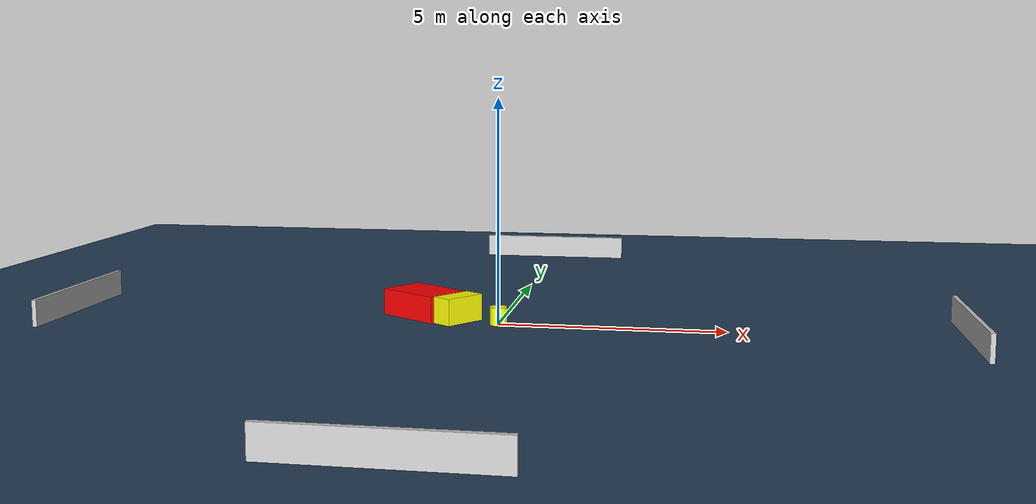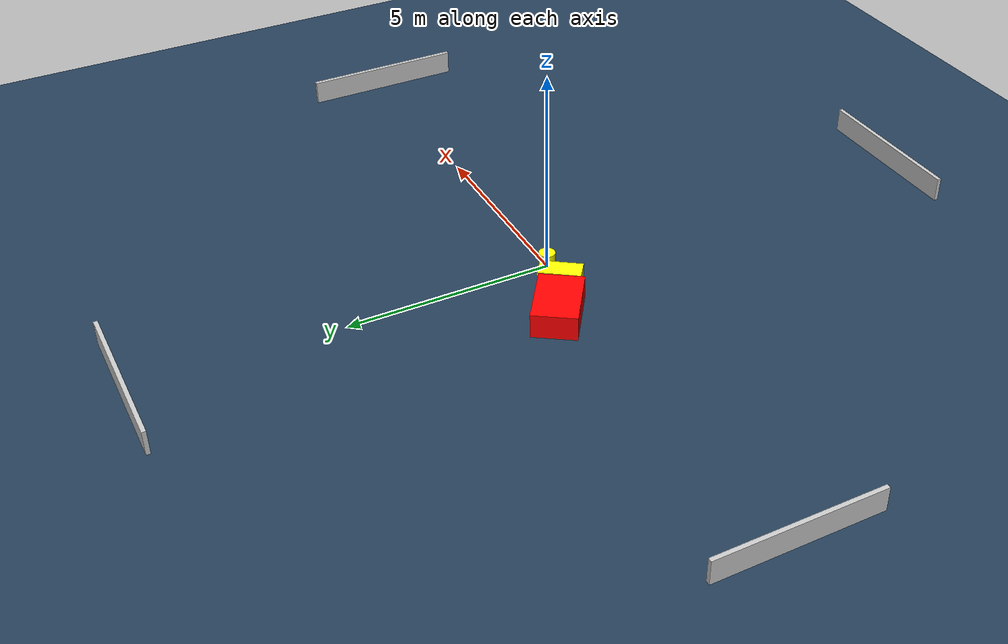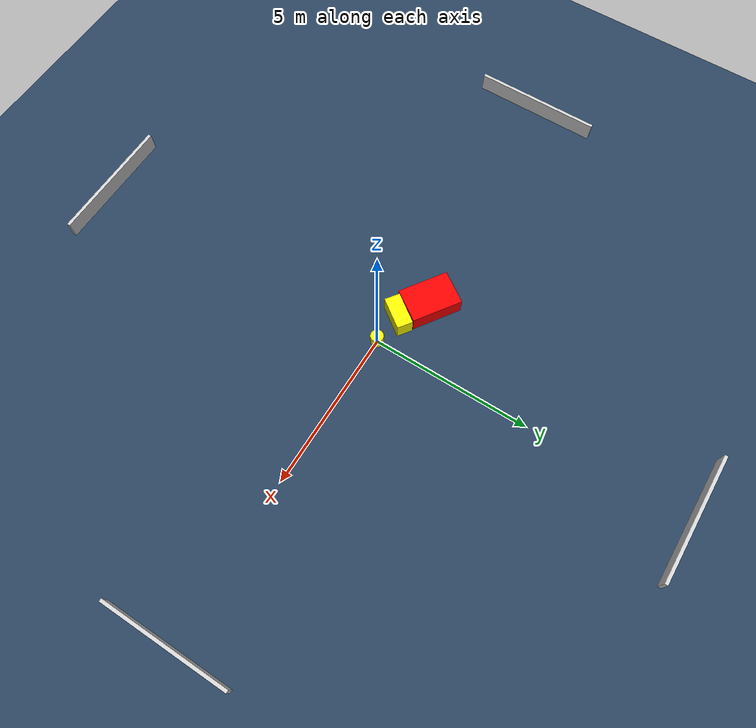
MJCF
<?xml version="1.0" ?>
<mujoco model="generated_environment">
  <option timestep="0.01" integrator="RK4" cone="elliptic"/>
  <default>
    <geom density="1"/>
  </default>
  <asset>
    <texture builtin="gradient" height="3072" name="skybox" rgb1="0.3 0.5 0.7" rgb2="0 0 0" type="skybox" width="512"/>
    <texture builtin="checker" height="300" name="groundplane" rgb1="0.2 0.3 0.4" rgb2="0.1 0.2 0.3" type="2d" width="300"/>
    <material name="groundplane" reflectance="0.2" texrepeat="5 5" texture="groundplane"/>
  </asset>
  <worldbody>
    <light dir="0 0 -1" directional="true" pos="0 0 1.5"/>
    <geom condim="3" friction="0.5 0.005 0.001" material="groundplane" name="floor" pos="0 0 0" size="0 0 0.05" type="plane"/>
    <body name="walls">
      <geom name="wall_1" condim="4" pos="-10.0 0.0 0.3" rgba="0.800000011920929 0.800000011920929 0.800000011920929 1.0" size="0.05 2.0 0.3" type="box"/>
      <geom name="wall_2" condim="4" pos="10.0 0.0 0.3" rgba="0.800000011920929 0.800000011920929 0.800000011920929 1.0" size="0.05 2.0 0.3" type="box"/>
      <geom name="wall_3" condim="4" pos="0.0 -10.0 0.3" rgba="0.800000011920929 0.800000011920929 0.800000011920929 1.0" size="2.0 0.05 0.3" type="box"/>
      <geom name="wall_4" condim="4" pos="0.0 10.0 0.3" rgba="0.800000011920929 0.800000011920929 0.800000011920929 1.0" size="2.0 0.05 0.3" type="box"/>
    </body>
    <body name="robot">
      <joint name="joint_x" type="slide" pos="0 0 0" axis="1 0 0"/>
      <joint name="joint_y" type="slide" pos="0 0 0" axis="0 1 0"/>
      <geom name="robot" type="cylinder" pos="0.0 0.0 0.2" size="0.2 0.2 0.0" mass="5.0" friction="1.0 0.005 0.0001" condim="4" rgba="1.0 1.0 0.0 1.0"/>
    </body>
    <body name="obstacle_1_movable">
      <geom name="obstacle_1_movable" condim="4" pos="-0.9457895155842492 0.15035812398141676 0.3" euler="0 0 144.2414925160386" friction="0.0 0.005 0.001" rgba="1.0 1.0 0.0 1.0" size="0.24534813193193072 0.5036715347783945 0.3" type="box" mass="0.1"/>
      <joint type="free"/>
    </body>
    <body name="obstacle_2_static">
      <geom name="obstacle_2_static" condim="4" pos="-1.8455430426007722 0.696119663171668 0.3" euler="0 0 235.67133738019143" friction="0.0 0.005 0.001" rgba="1.0 0.0 0.0 1.0" size="0.5340748022603932 0.786400881784546 0.3" type="box"/>
    </body>
  </worldbody>
  <actuator>
    <motor name="actuator_x" joint="joint_x" gear="1" ctrlrange="-1 1"/>
    <motor name="actuator_y" joint="joint_y" gear="1" ctrlrange="-1 1"/>
  </actuator>
</mujoco>
